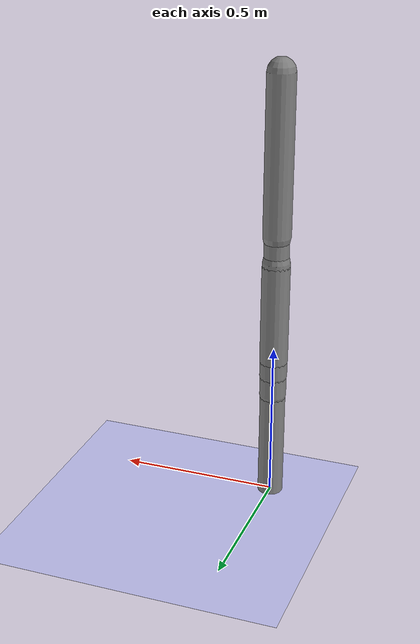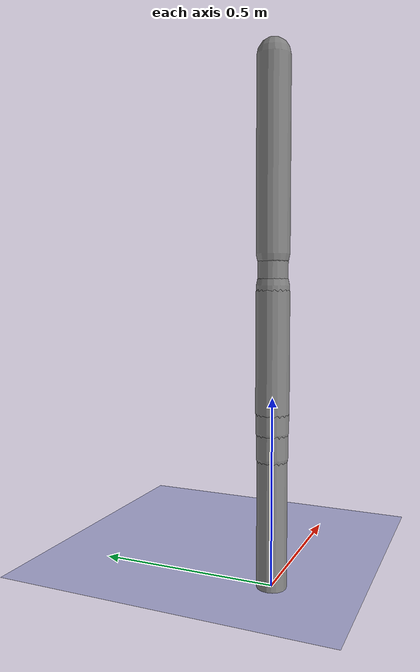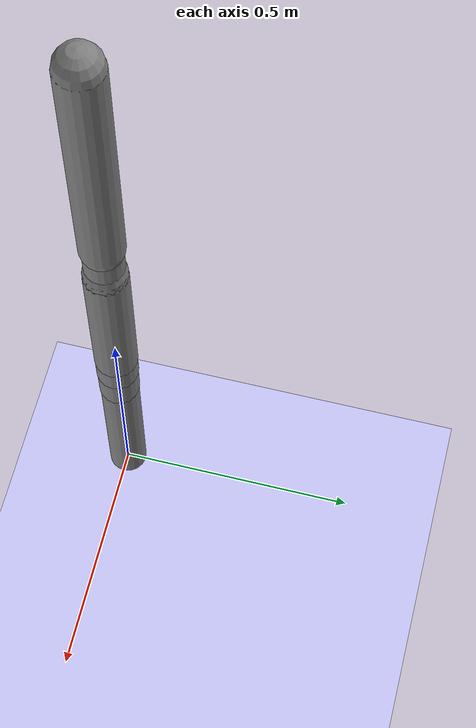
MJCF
<?xml version='1.0' encoding='UTF-8'?>
<mujoco model="robot_model">
  <worldbody>
    <light name="light" pos="0 -3 10" dir="0 0.5 -1" diffuse=".8 .8 .8" specular="0.1 0.1 0.1"/>
    <geom name="floor" type="plane" size="10.0 10.0 0.1" pos="0 0 0" rgba="0.8 0.8 1 1" contype="2" conaffinity="1"/>
    <body name="limb0" pos="0 0 0">
      <geom type="capsule" fromto="0 0 0 0 0 0.5832040965437937" size="0.04" density="693.3660844836179" contype="1" conaffinity="2"/>
      <site type="sphere" size="0.01" name="limb0_site0" pos="0 0 0.33645490079282897"/>
      <freejoint name="limb0_root"/>
      <body name="limb1" pos="0 0 0.33645490079282897">
        <geom type="capsule" fromto="0 0 0 0 0 0.11789116681523648" size="0.03350622500036012" density="601.2330562842756" contype="1" conaffinity="2"/>
        <site type="sphere" size="0.01" name="limb1_site0" pos="0 0 0.0735526269420766"/>
        <site type="sphere" size="0.01" name="limb1_site1" pos="0 0 0.0065661577480942025"/>
        <site type="sphere" size="0.01" name="limb1_site2" pos="0 0 0.09601367094402079"/>
        <body name="limb2" pos="0 0 0.0735526269420766">
          <geom type="capsule" fromto="0 0 0 0 0 0.38231057733543733" size="0.04320126958942399" density="764.0354914470512" contype="1" conaffinity="2"/>
          <site type="sphere" size="0.01" name="limb2_site0" pos="0 0 0.05068397503695492"/>
          <body name="limb3" pos="0 0 0.05068397503695492">
            <geom type="capsule" fromto="0 0 0 0 0 0.3159768240312215" size="0.04398226962321314" density="874.9200254675034" contype="1" conaffinity="2"/>
            <joint name="joint_limb2_limb3_0" type="hinge" axis="0 0 1" range="-118.11198317294439 118.11198317294439" damping="5.0"/>
          </body>
          <joint name="joint_limb1_limb2_0" type="hinge" axis="0 1 0" range="-79.19027832141104 79.19027832141104" damping="5.0"/>
        </body>
        <body name="limb4" pos="0 0 0.0065661577480942025">
          <geom type="capsule" fromto="0 0 0 0 0 0.3449366956007403" size="0.04182995516077146" density="888.638751137447" contype="1" conaffinity="2"/>
          <site type="sphere" size="0.01" name="limb4_site0" pos="0 0 0.34476469369601037"/>
          <body name="limb5" pos="0 0 0.34476469369601037">
            <geom type="capsule" fromto="0 0 0 0 0 0.4151020360951895" size="0.03404384580291117" density="917.0842306345735" contype="1" conaffinity="2"/>
            <joint name="joint_limb4_limb5_0" type="hinge" axis="0 1 0" range="-97.60316524447805 97.60316524447805" damping="5.0"/>
          </body>
          <joint name="joint_limb1_limb4_0" type="hinge" axis="1 0 0" range="-76.57739072162552 76.57739072162552" damping="5.0"/>
        </body>
        <body name="limb6" pos="0 0 0.09601367094402079">
          <geom type="capsule" fromto="0 0 0 0 0 0.5" size="0.03926549675410116" density="1058.8769662480563" contype="1" conaffinity="2"/>
          <site type="sphere" size="0.01" name="limb6_site0" pos="0 0 0.2560745598104502"/>
          <site type="sphere" size="0.01" name="limb6_site1" pos="0 0 0.44076882258336086"/>
          <site type="sphere" size="0.01" name="limb6_site2" pos="0 0 0.25203444162184496"/>
          <body name="limb7" pos="0 0 0.2560745598104502">
            <geom type="capsule" fromto="0 0 0 0 0 0.10132629865508748" size="0.028272016099352537" density="685.6739189435759" contype="1" conaffinity="2"/>
            <joint name="joint_limb6_limb7_0" type="hinge" axis="1 0 0" range="-37.98979274174003 37.98979274174003" damping="5.0"/>
          </body>
          <body name="limb8" pos="0 0 0.44076882258336086">
            <geom type="capsule" fromto="0 0 0 0 0 0.5" size="0.04388830674894705" density="1088.5047358501738" contype="1" conaffinity="2"/>
            <joint name="joint_limb6_limb8_0" type="hinge" axis="0 1 0" range="-118.69762092772474 118.69762092772474" damping="5.0"/>
          </body>
          <body name="limb9" pos="0 0 0.25203444162184496">
            <geom type="capsule" fromto="0 0 0 0 0 0.4455450308977437" size="0.03622768051479255" density="1180.2390319035876" contype="1" conaffinity="2"/>
            <joint name="joint_limb6_limb9_0" type="hinge" axis="0 0 1" range="-106.17964630106378 106.17964630106378" damping="5.0"/>
          </body>
          <joint name="joint_limb1_limb6_0" type="hinge" axis="0 1 0" range="-100.19138469108644 100.19138469108644" damping="5.0"/>
        </body>
        <joint name="joint_limb0_limb1_0" type="hinge" axis="0 1 0" range="-111.10861513429451 111.10861513429451" damping="5.0"/>
      </body>
    </body>
  </worldbody>
  <actuator>
    <position name="position_actuator_joint_limb0_limb1_0" joint="joint_limb0_limb1_0" gear="1.660518880615472" inheritrange="1" kp="10.0"/>
    <position name="position_actuator_joint_limb1_limb2_0" joint="joint_limb1_limb2_0" gear="1.0104857860709995" inheritrange="1" kp="10.0"/>
    <position name="position_actuator_joint_limb2_limb3_0" joint="joint_limb2_limb3_0" gear="1.2993474610322076" inheritrange="1" kp="10.0"/>
    <position name="position_actuator_joint_limb1_limb4_0" joint="joint_limb1_limb4_0" gear="1.9786544527946286" inheritrange="1" kp="10.0"/>
    <position name="position_actuator_joint_limb4_limb5_0" joint="joint_limb4_limb5_0" gear="1.7459471619076385" inheritrange="1" kp="10.0"/>
    <position name="position_actuator_joint_limb1_limb6_0" joint="joint_limb1_limb6_0" gear="1.233825117296027" inheritrange="1" kp="10.0"/>
    <position name="position_actuator_joint_limb6_limb7_0" joint="joint_limb6_limb7_0" gear="2.0" inheritrange="1" kp="10.0"/>
    <position name="position_actuator_joint_limb6_limb8_0" joint="joint_limb6_limb8_0" gear="1.7310688920449273" inheritrange="1" kp="10.0"/>
    <position name="position_actuator_joint_limb6_limb9_0" joint="joint_limb6_limb9_0" gear="0.7597488265685853" inheritrange="1" kp="10.0"/>
  </actuator>
</mujoco>
